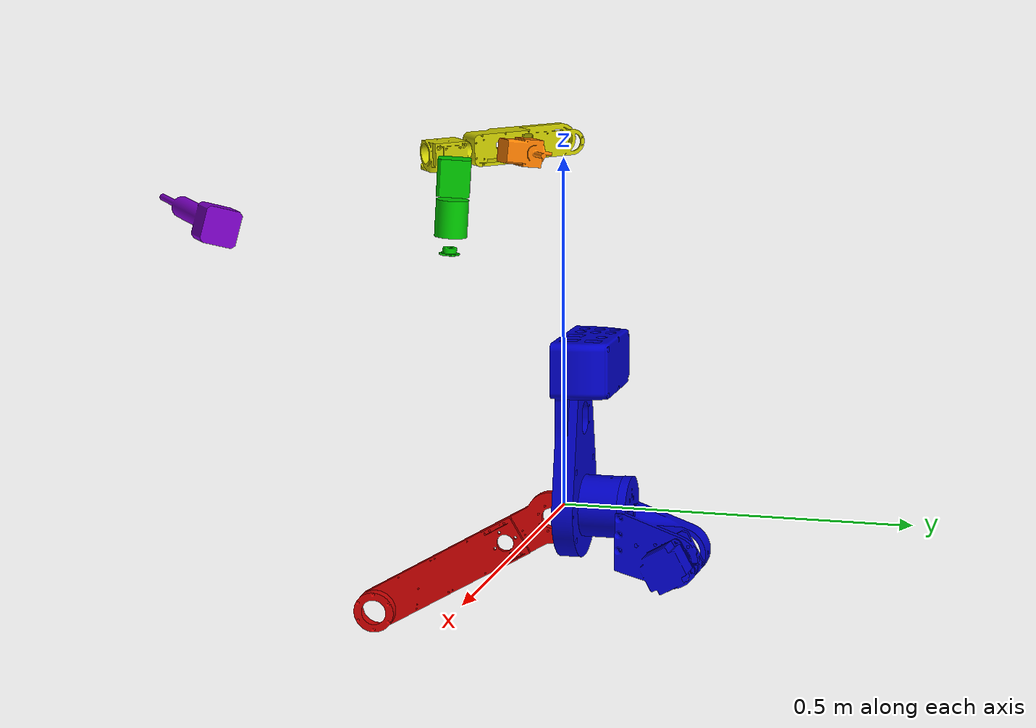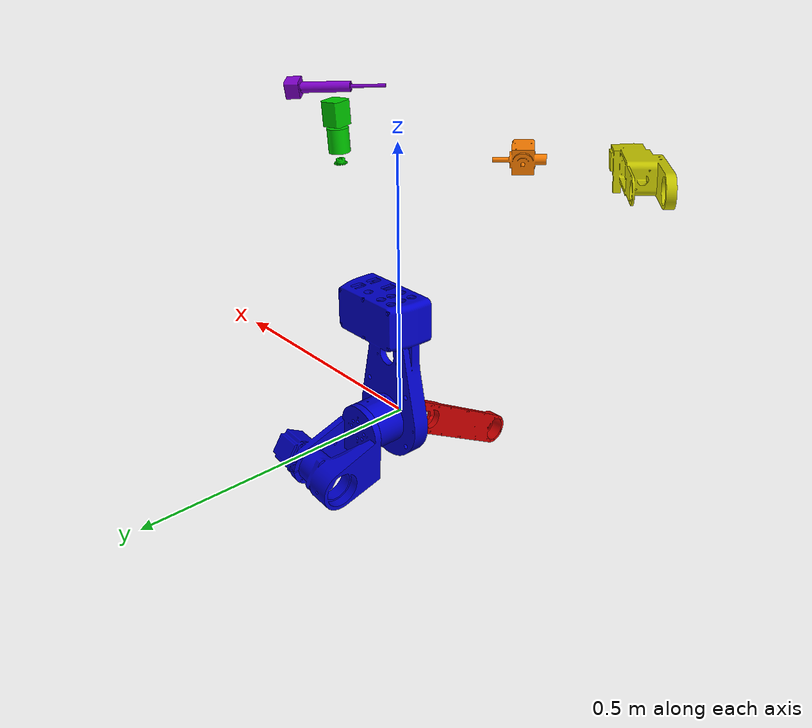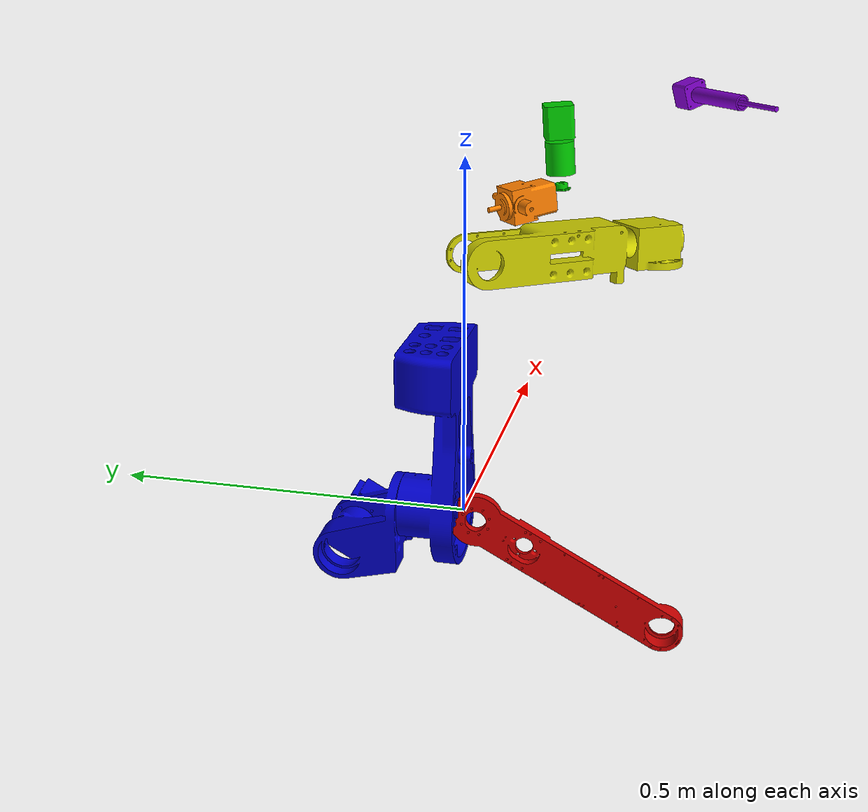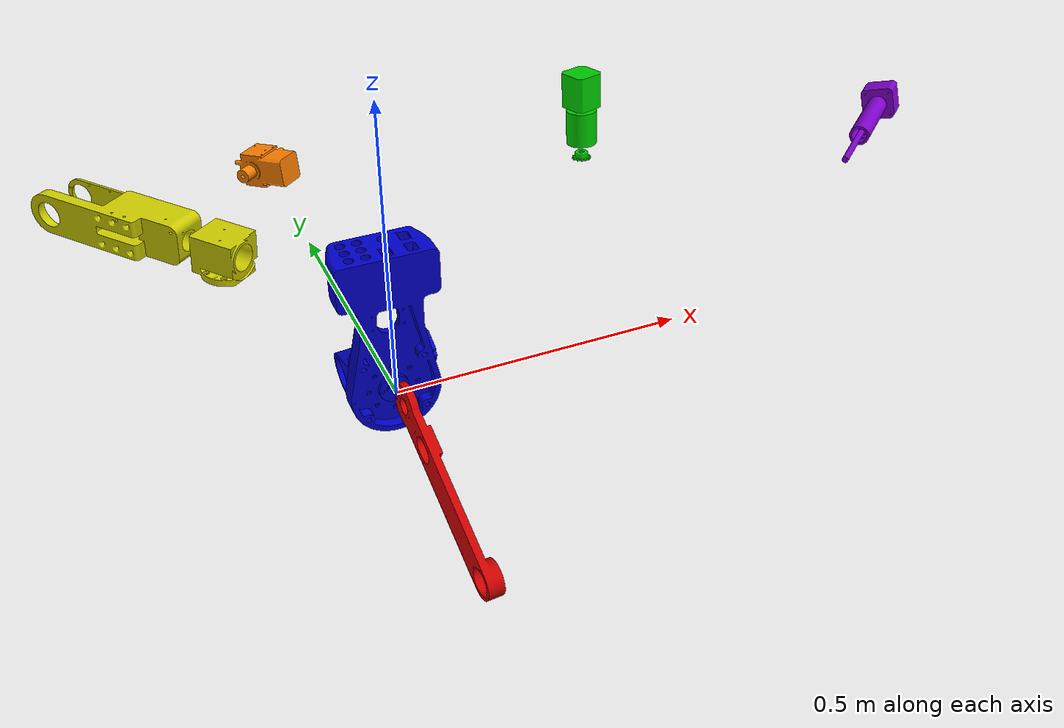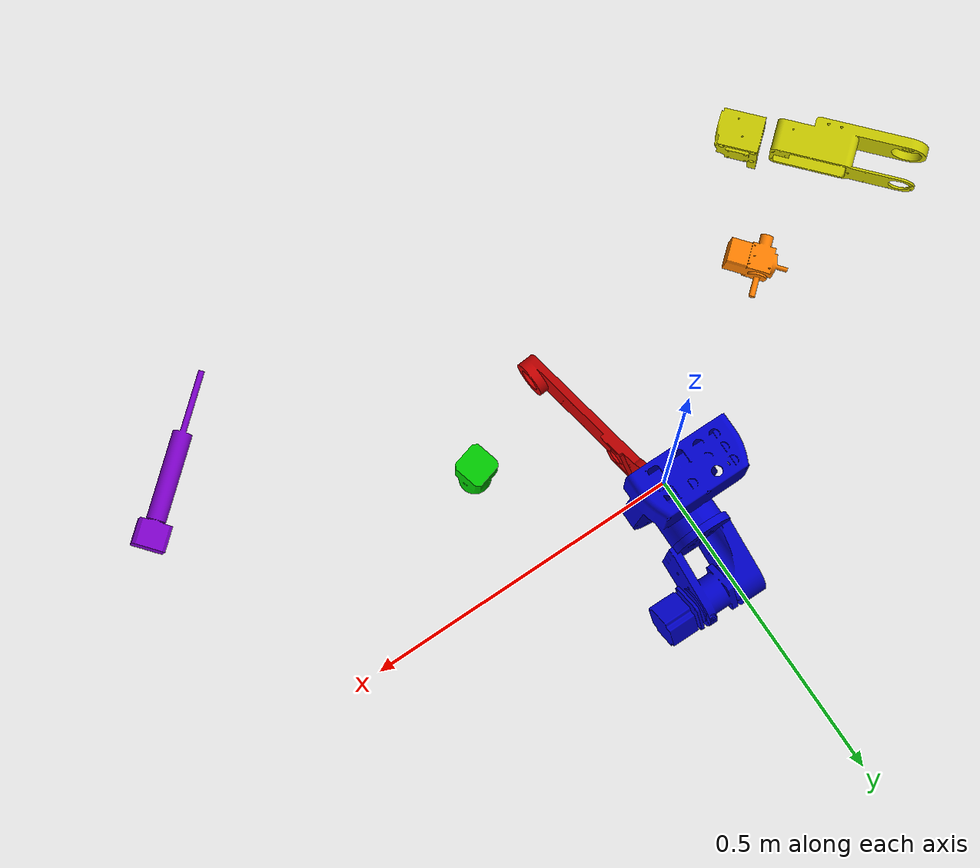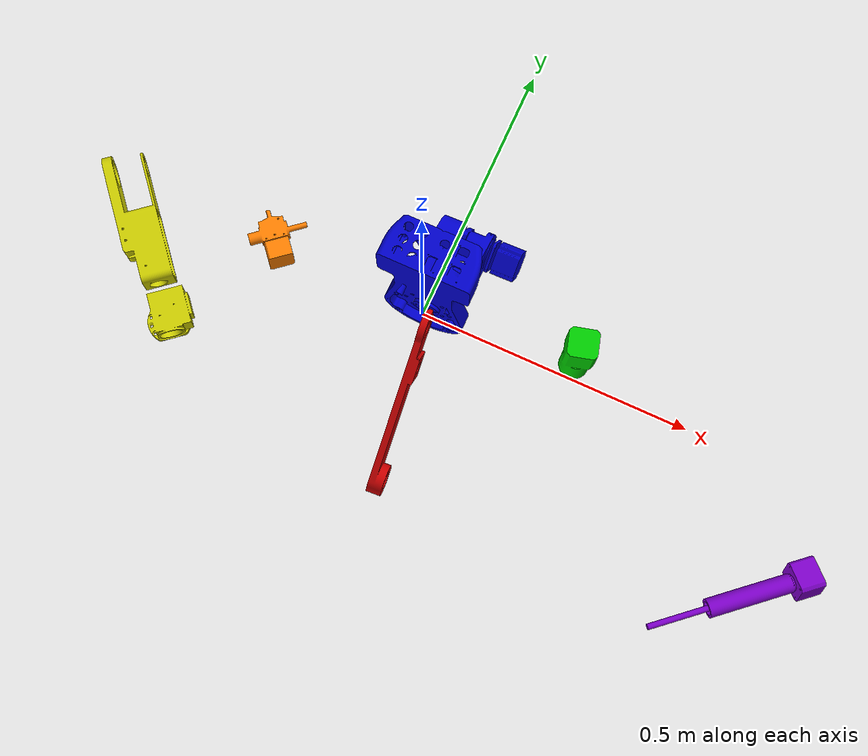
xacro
<?xml version="1.0"?>
<robot xmlns:xacro="http://www.ros.org/wiki/xacro" name="my_robot">

    <xacro:property name="d1" value="0" />
    <xacro:property name="a1" value="0" />
    <xacro:property name="alpha1" value="0" />
    <xacro:property name="d2" value="0.1512" />
    <xacro:property name="a2" value="0.0641" />
    <xacro:property name="alpha2" value="${-pi/2}" />
    <xacro:property name="d3" value="0" />
    <xacro:property name="a3" value="0.305" />
    <xacro:property name="alpha3" value="${-pi/2}" />
    <xacro:property name="d4" value="0.0" />
    <xacro:property name="a4" value="0.0" />
    <xacro:property name="alpha4" value="${-pi/2}" />
    <xacro:property name="d5" value="0.226" />
    <xacro:property name="a5" value="0.0" />
    <xacro:property name="alpha5" value="${pi/2}" />
    <xacro:property name="d6" value="0.0" />
    <xacro:property name="a6" value="0.0" />
    <xacro:property name="alpha6" value="${-pi/2}" />

    <link name="Base_link">
    <visual>
      <geometry>
        <mesh filename="package://my_robot_description/meshes/Base_link.stl" />
      </geometry>
      <material name="blue"/>
    </visual>
    <collision>
      <geometry>
        <mesh filename="package://my_robot_description/meshes/Base_link.stl"/>
      </geometry>
    </collision>

    <inertial>
      <mass value="7.459715"/>

      <origin xyz="-0.169292 -0.070267 -0.01062" rpy="0 0 0"/>

      <inertia
          ixx="0.0192"   ixy="7.2931e-07"  ixz="0.002723"
          iyy="0.06688"  iyz="3.6823e-06"
          izz="0.0718" />
    </inertial>
  </link>

    <link name="Link_1">
    <visual>
      <geometry>
        <mesh filename="package://my_robot_description/meshes/Link_1.stl" />
      </geometry>
      <material name="blue"/>
    </visual>
    <collision>
      <geometry>
        <mesh filename="package://my_robot_description/meshes/Link_1.stl"/>
      </geometry>
    </collision>

    <inertial>
      <mass value="7.144819"/>

      <origin xyz="-0.034714 -0.085659 0.09832" rpy="0 0 0"/>

      <inertia
          ixx="0.03258"     ixy="0.002621"    ixz="-0.008713"
          iyy="0.02746"     iyz="0.005571"
          izz="2.084e+07" />
    </inertial>
  </link>

    <link name="Link_2">
    <visual>
      <geometry>
        <mesh filename="package://my_robot_description/meshes/Link_2.stl" />
      </geometry>
      <material name="red"/>
    </visual>
    <collision>
      <geometry>
        <mesh filename="package://my_robot_description/meshes/Link_2.stl"  />
      </geometry>
    </collision>

    <inertial>
      <mass value="2.275306"/>

      <origin xyz="-0.013716 -0.016519 0.02379" rpy="0 0 0"/>

      <inertia
          ixx="0.02892"     ixy="-1.36994e-07"  ixz="-3.584117e-06"
          iyy="0.02943"     iyz="-6.8824154e-05"
          izz="9.466e+05" />
    </inertial>
  </link>

    <link name="Link_3">
    <visual>
      <geometry>
        <mesh filename="package://my_robot_description/meshes/Link_3.stl"  />
      </geometry>
      <material name="green"/>
    </visual>
    <collision>
      <geometry>
        <mesh filename="package://my_robot_description/meshes/Link_3.stl"/>
      </geometry>
    </collision>

    <inertial>
      <mass value="1.721937"/>

      <origin xyz="-0.018038 -0.063262 0.423" rpy="0 0 0"/>

      <inertia
          ixx="0.00187"     ixy="-0.0001058"    ixz="-7.1784629e-05"
          iyy="0.002313"    iyz="-0.0002432"
          izz="0.001424" />
    </inertial>
  </link>

  <link name="Link_4">
    <visual>
      <geometry>
        <mesh filename="package://my_robot_description/meshes/Link_4.stl" />
      </geometry>
      <material name="yellow"/>
    </visual>
    <collision>
      <geometry>
        <mesh filename="package://my_robot_description/meshes/Link_4.stl" />
      </geometry>
    </collision>

    <inertial>
      <mass value="2.516104"/>

      <origin xyz="0.073436 -0.063409 0.446069" rpy="0 0 0"/>

      <inertia
          ixx="0.001275"    ixy="-0.001859"    ixz="1.6048041e-05"
          iyy="0.02139"     iyz="-7.729732e-06"
          izz="0.02163" />
    </inertial>
  </link>

    <link name="Link_5">
    <visual>
      <geometry>
        <mesh filename="package://my_robot_description/meshes/Link_5.stl"  />
      </geometry>
      <material name="purple"/>
    </visual>
    <collision>
      <geometry>
        <mesh filename="package://my_robot_description/meshes/Link_5.stl"  />
      </geometry>
    </collision>

    <inertial>
      <mass value="0.737922"/>

      <origin xyz="0.197942 -0.072188 0.447687" rpy="0 0 0"/>

      <inertia
          ixx="0.0002075"   ixy="-2.393396e-06"  ixz="-1.3462959e-05"
          iyy="0.0003291"   iyz="4.07477e-06"
          izz="0.0003319" />
    </inertial>
  </link>

    <link name="Link_6">
    <visual>
      <geometry>
        <mesh filename="package://my_robot_description/meshes/Link_6.stl" />
      </geometry>
      <material name="orange"/>
    </visual>
    <collision>
      <geometry>
        <mesh filename="package://my_robot_description/meshes/Link_6.stl" />
      </geometry>
    </collision>

    <inertial>
      <mass value="0.325456"/>

      <origin xyz="0.250969 -0.072331 0.446293" rpy="0 0 0"/>

      <inertia
          ixx="8.6930674e-05" ixy="-5.851e-09"    ixz="1.6137e-08"
          iyy="7.1777476e-05" iyz="2.22753e-07"
          izz="0.0001153" />
    </inertial>
  </link>

    <joint name="joint_1" type="revolute">
        <parent link="Base_link"/>
        <child link="Link_1"/>
        <origin xyz="0 0 0" rpy="0 0 0"/>
        <axis xyz="0 0 1"/>
        <limit lower="${-pi}" upper="${pi}" effort="100" velocity="1.0"/>
    </joint>

    <joint name="joint_2" type="revolute">
        <parent link="Link_1"/>
        <child link="Link_2"/>
        <origin xyz="${a2} 0.053 ${d2}" rpy="${alpha2} 0 0"/>
        <axis xyz="0 0 1"/>
        <limit lower="${-pi/2}" upper="${pi/2}" effort="100" velocity="1.0"/>
    </joint>

    <joint name="joint_3" type="revolute">
        <parent link="Link_2"/>
        <child link="Link_3"/>
        <origin xyz="0 -0.305 0" rpy="0 0 ${alpha3}"/>
        <axis xyz="0 0 1"/>
        <limit lower="${-pi}" upper="${pi}" effort="100" velocity="1.0"/>
    </joint>

    <joint name="joint_4" type="revolute">
        <parent link="Link_3"/>
        <child link="Link_4"/>
        <origin xyz="${a4} 0 ${d4}" rpy="${alpha4} 0 0"/>
        <axis xyz="0 0 1"/>
        <limit lower="${-pi}" upper="${pi}" effort="100" velocity="1.0"/>
    </joint>

    <joint name="joint_5" type="revolute">
        <parent link="Link_4"/>
        <child link="Link_5"/>
        <origin xyz="${a5} 0 ${d5}" rpy="${alpha5} 0 0"/>
        <axis xyz="0 0 1"/>
        <limit lower="${-pi}" upper="${pi}" effort="100" velocity="1.0"/>
    </joint>

    <joint name="joint_6" type="revolute">
        <parent link="Link_5"/>
        <child link="Link_6"/>
        <origin xyz="${a6} 0 ${d6}" rpy="${alpha6} 0 0"/>
        <axis xyz="0 0 1"/>
        <limit lower="${-pi}" upper="${pi}" effort="100" velocity="1.0"/>
    </joint>

    <material name="blue">
        <color rgba="0.0 0.0 0.8 1.0"/>
    </material>
    <material name="grey">
        <color rgba="0.5 0.5 0.5 1.0"/>
    </material>

    <material name="red">
        <color rgba="0.8 0.0 0.0 1.0"/>
    </material>
    <material name="green">
        <color rgba="0.0 0.8 0.0 1.0"/>
    </material>
    <material name="yellow">
        <color rgba="0.8 0.8 0.0 1.0"/>
    </material>
    <material name="purple">
        <color rgba="0.5 0.0 0.8 1.0"/>
    </material>
    <material name="orange">
        <color rgba="1.0 0.5 0.0 1.0"/>
    </material>

</robot>
